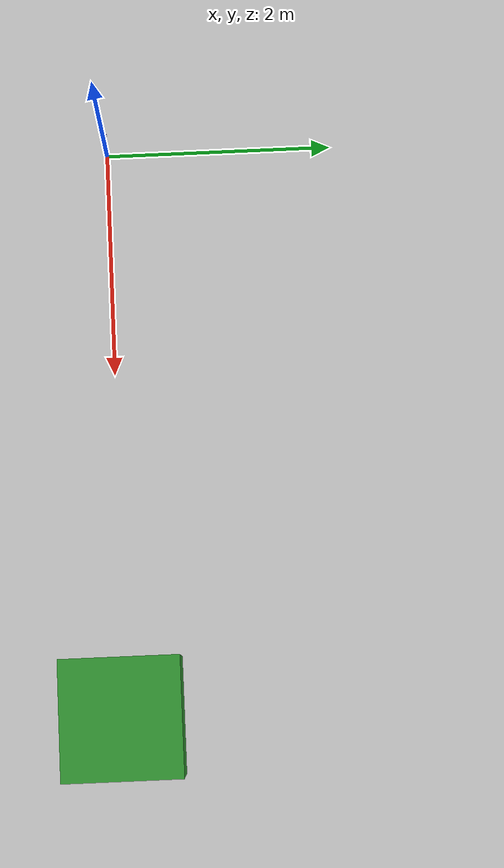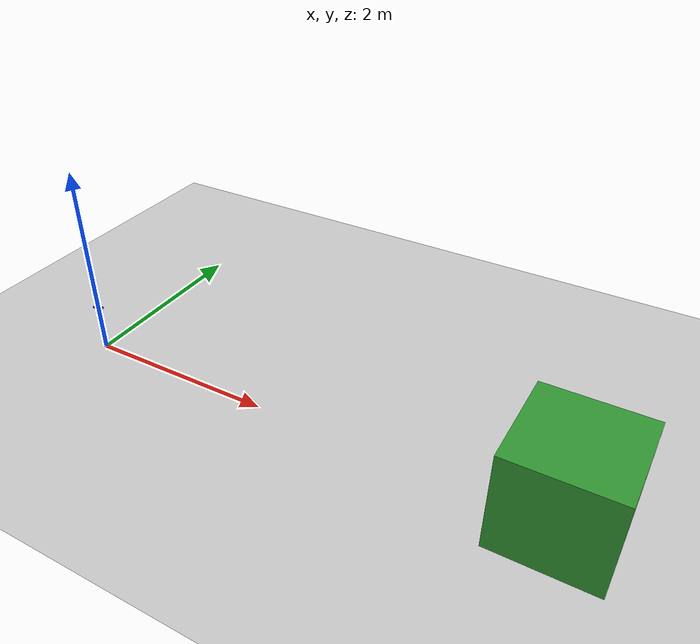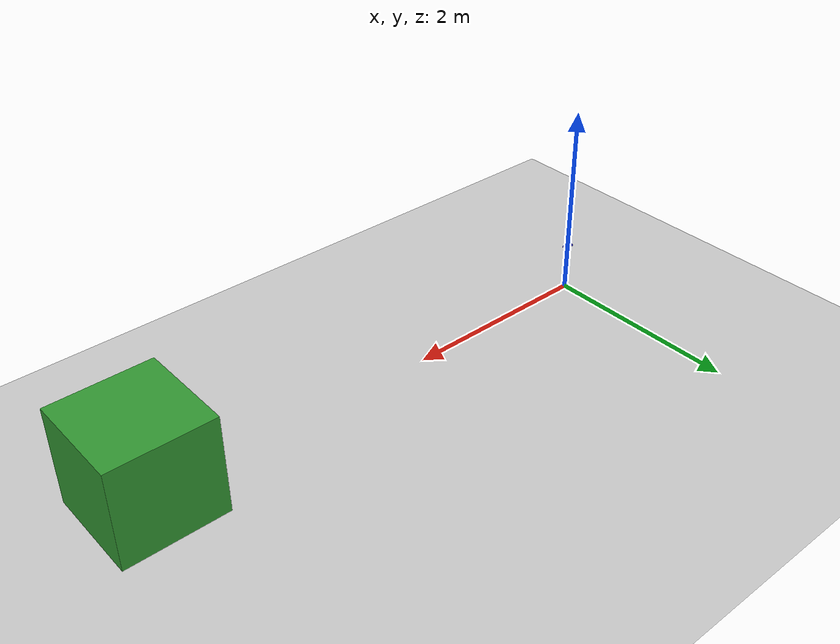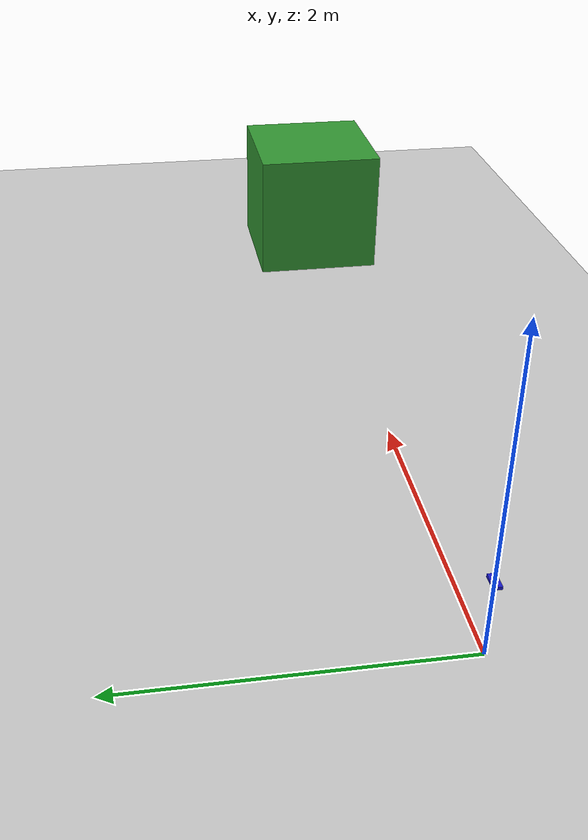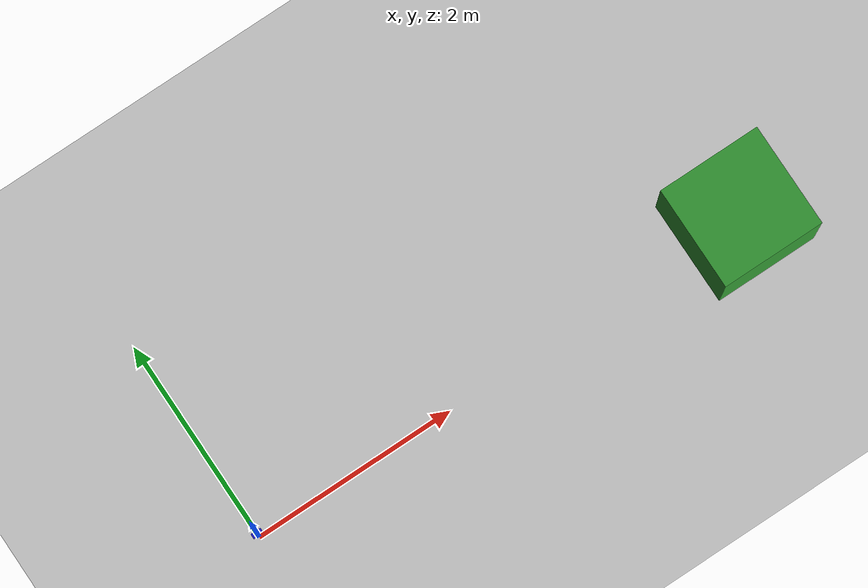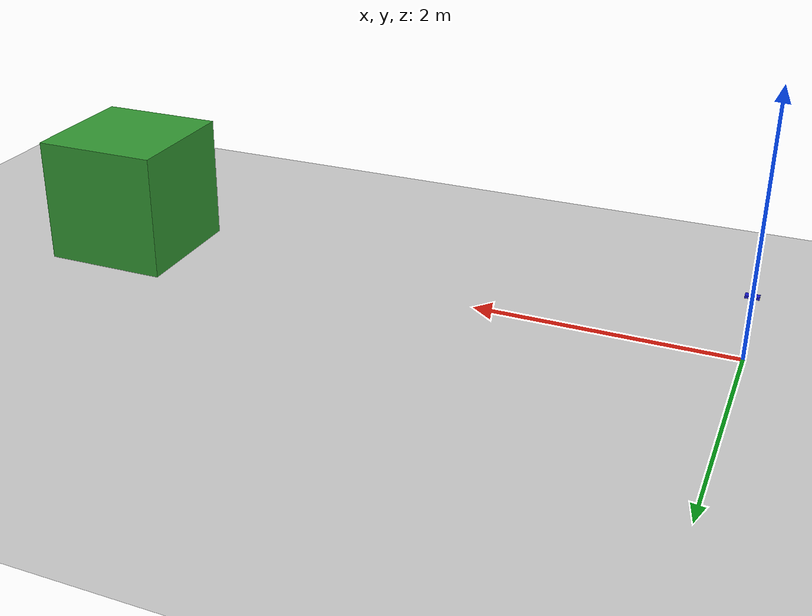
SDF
<?xml version="1.0" ?>
<sdf version="1.10">
  <world name="mmwave_demo_world">

    <!-- ── Physics ──────────────────────────────────────────────────────── -->
    <physics name="1ms" type="ignored">
      <max_step_size>0.001</max_step_size>
      <real_time_factor>1.0</real_time_factor>
    </physics>

    <!-- Required Gazebo Sim plugins -->
    <plugin filename="gz-sim-physics-system"
            name="gz::sim::systems::Physics"/>
    <plugin filename="gz-sim-user-commands-system"
            name="gz::sim::systems::UserCommands"/>
    <plugin filename="gz-sim-scene-broadcaster-system"
            name="gz::sim::systems::SceneBroadcaster"/>

    <!-- ── Lighting ─────────────────────────────────────────────────────── -->
    <light type="directional" name="sun">
      <cast_shadows>true</cast_shadows>
      <pose>0 0 10 0 0 0</pose>
      <diffuse>0.8 0.8 0.8 1</diffuse>
      <specular>0.2 0.2 0.2 1</specular>
      <direction>-0.5 0.1 -0.9</direction>
    </light>

    <!-- ── Ground plane ─────────────────────────────────────────────────── -->
    <model name="ground_plane">
      <static>true</static>
      <link name="link">
        <collision name="collision">
          <geometry><plane><normal>0 0 1</normal></plane></geometry>
        </collision>
        <visual name="visual">
          <geometry><plane><normal>0 0 1</normal><size>100 100</size></plane></geometry>
          <material><ambient>0.8 0.8 0.8 1</ambient></material>
        </visual>
      </link>
    </model>

    <!-- ── Static obstacle (box at 5 m ahead) ──────────────────────────── -->
    <model name="box_obstacle">
      <static>true</static>
      <pose>5 0 0.5 0 0 0</pose>
      <link name="link">
        <collision name="collision">
          <geometry><box><size>1 1 1</size></box></geometry>
        </collision>
        <visual name="visual">
          <geometry><box><size>1 1 1</size></box></geometry>
          <material><ambient>0.2 0.6 0.2 1</ambient></material>
        </visual>
      </link>
    </model>

    <!-- ── mmWave radar model ────────────────────────────────────────────── -->
    <!--
      The sensor is attached at the origin.
      The plugin is a model-level System plugin.
      Adjust v_min / v_max to match what you pass to mmwave_colorizer.
    -->
    <model name="mmwave_radar">
      <static>true</static>
      <pose>0 0 0.5 0 0 0</pose>

      <link name="mmwave_link">
        <!-- Tiny visual representation of the radar -->
        <visual name="visual">
          <geometry>
            <box><size>0.1 0.05 0.02</size></box>
          </geometry>
          <material><ambient>0.1 0.1 0.8 1</ambient></material>
        </visual>
      </link>

      <!--
        gazebo_mmwave_sensor plugin
        All parameters are optional – defaults match those listed in the header.
      -->
      <plugin
        filename="libgazebo_mmwave_sensor.so"
        name="gazebo_mmwave_sensor::MmwaveSensorPlugin">

        <topic>/mmwave/points</topic>
        <frame_id>mmwave_link</frame_id>
        <update_rate>10</update_rate>

        <min_range>0.2</min_range>
        <max_range>50.0</max_range>

        <h_fov>2.094</h_fov>   <!-- ~120 deg -->
        <v_fov>0.349</v_fov>   <!-- ~20 deg  -->
        <num_rays_h>256</num_rays_h>
        <num_rays_v>16</num_rays_v>

        <range_noise_std>0.02</range_noise_std>

        <!-- Fixed velocity colour range – must match mmwave_colorizer params -->
        <v_min>-10.0</v_min>
        <v_max>10.0</v_max>

        <debug_draw_rays>false</debug_draw_rays>
      </plugin>
    </model>

  </world>
</sdf>
